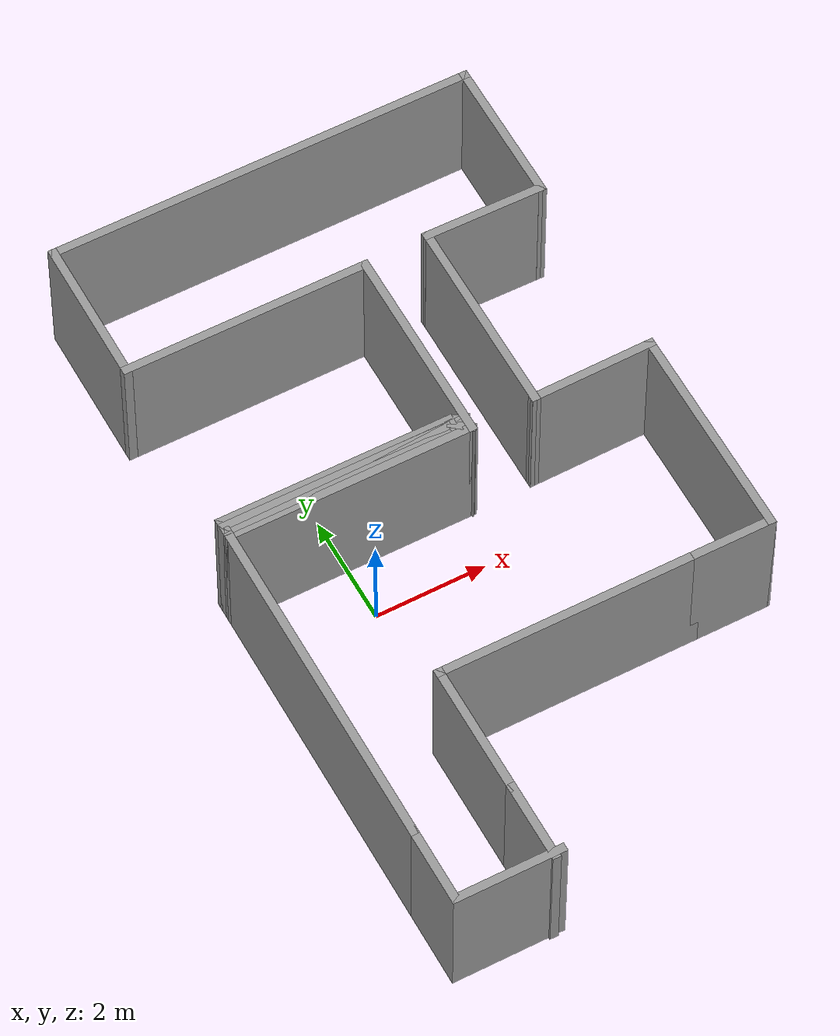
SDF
<?xml version='1.0'?>
<sdf version='1.7'>
  <model name='paper3'>
    <pose>1.78052 0.395 0 0 -0 0</pose>
    <link name='Wall_1'>
      <collision name='Wall_1_Collision'>
        <geometry>
          <box>
            <size>6.25 0.15 2.5</size>
          </box>
        </geometry>
        <pose>0 0 1.25 0 -0 0</pose>
      </collision>
      <visual name='Wall_1_Visual'>
        <pose>0 0 1.25 0 -0 0</pose>
        <geometry>
          <box>
            <size>6.25 0.15 2.5</size>
          </box>
        </geometry>
        <material>
          <script>
            <uri>file://media/materials/scripts/gazebo.material</uri>
            <name>Gazebo/Grey</name>
          </script>
          <ambient>1 1 1 1</ambient>
        </material>
        <meta>
          <layer>0</layer>
        </meta>
      </visual>
      <pose>-3.83052 -2.405 0 0 -0 -1.5708</pose>
    </link>
    <link name='Wall_12'>
      <collision name='Wall_12_Collision'>
        <geometry>
          <box>
            <size>0.25 0.15 2.5</size>
          </box>
        </geometry>
        <pose>0 0 1.25 0 -0 0</pose>
      </collision>
      <visual name='Wall_12_Visual'>
        <pose>0 0 1.25 0 -0 0</pose>
        <geometry>
          <box>
            <size>0.25 0.15 2.5</size>
          </box>
        </geometry>
        <material>
          <script>
            <uri>file://media/materials/scripts/gazebo.material</uri>
            <name>Gazebo/Grey</name>
          </script>
          <ambient>1 1 1 1</ambient>
        </material>
        <meta>
          <layer>0</layer>
        </meta>
      </visual>
      <pose>-3.83052 0.695 0 0 -0 1.5708</pose>
    </link>
    <link name='Wall_13'>
      <collision name='Wall_13_Collision'>
        <geometry>
          <box>
            <size>4.25 0.15 2.5</size>
          </box>
        </geometry>
        <pose>0 0 1.25 0 -0 0</pose>
      </collision>
      <visual name='Wall_13_Visual'>
        <pose>0 0 1.25 0 -0 0</pose>
        <geometry>
          <box>
            <size>4.25 0.15 2.5</size>
          </box>
        </geometry>
        <material>
          <script>
            <uri>file://media/materials/scripts/gazebo.material</uri>
            <name>Gazebo/Grey</name>
          </script>
          <ambient>1 1 1 1</ambient>
        </material>
        <meta>
          <layer>0</layer>
        </meta>
      </visual>
      <pose>-1.78052 0.745 0 0 -0 0</pose>
    </link>
    <link name='Wall_14'>
      <collision name='Wall_14_Collision'>
        <geometry>
          <box>
            <size>0.25 0.15 2.5</size>
          </box>
        </geometry>
        <pose>0 0 1.25 0 -0 0</pose>
      </collision>
      <visual name='Wall_14_Visual'>
        <pose>0 0 1.25 0 -0 0</pose>
        <geometry>
          <box>
            <size>0.25 0.15 2.5</size>
          </box>
        </geometry>
        <material>
          <script>
            <uri>file://media/materials/scripts/gazebo.material</uri>
            <name>Gazebo/Grey</name>
          </script>
          <ambient>1 1 1 1</ambient>
        </material>
        <meta>
          <layer>0</layer>
        </meta>
      </visual>
      <pose>0.269483 0.795 0 0 -0 1.5708</pose>
    </link>
    <link name='Wall_15'>
      <collision name='Wall_15_Collision'>
        <geometry>
          <box>
            <size>3.75 0.15 2.5</size>
          </box>
        </geometry>
        <pose>0 0 1.25 0 -0 0</pose>
      </collision>
      <visual name='Wall_15_Visual'>
        <pose>0 0 1.25 0 -0 0</pose>
        <geometry>
          <box>
            <size>3.75 0.15 2.5</size>
          </box>
        </geometry>
        <material>
          <script>
            <uri>file://media/materials/scripts/gazebo.material</uri>
            <name>Gazebo/Grey</name>
          </script>
          <ambient>1 1 1 1</ambient>
        </material>
        <meta>
          <layer>0</layer>
        </meta>
      </visual>
      <pose>-1.53052 0.845 0 0 -0 3.14159</pose>
    </link>
    <link name='Wall_17'>
      <collision name='Wall_17_Collision'>
        <geometry>
          <box>
            <size>0.25 0.15 2.5</size>
          </box>
        </geometry>
        <pose>0 0 1.25 0 -0 0</pose>
      </collision>
      <visual name='Wall_17_Visual'>
        <pose>0 0 1.25 0 -0 0</pose>
        <geometry>
          <box>
            <size>0.25 0.15 2.5</size>
          </box>
        </geometry>
        <material>
          <script>
            <uri>file://media/materials/scripts/gazebo.material</uri>
            <name>Gazebo/Grey</name>
          </script>
          <ambient>1 1 1 1</ambient>
        </material>
        <meta>
          <layer>0</layer>
        </meta>
      </visual>
      <pose>-3.83052 0.795 0 0 -0 1.5708</pose>
    </link>
    <link name='Wall_18'>
      <collision name='Wall_18_Collision'>
        <geometry>
          <box>
            <size>4.5 0.15 2.5</size>
          </box>
        </geometry>
        <pose>0 0 1.25 0 -0 0</pose>
      </collision>
      <visual name='Wall_18_Visual'>
        <pose>0 0 1.25 0 -0 0</pose>
        <geometry>
          <box>
            <size>4.5 0.15 2.5</size>
          </box>
        </geometry>
        <material>
          <script>
            <uri>file://media/materials/scripts/gazebo.material</uri>
            <name>Gazebo/Grey</name>
          </script>
          <ambient>1 1 1 1</ambient>
        </material>
        <meta>
          <layer>0</layer>
        </meta>
      </visual>
      <pose>-1.65552 0.845 0 0 -0 0</pose>
    </link>
    <link name='Wall_21'>
      <collision name='Wall_21_Collision'>
        <geometry>
          <box>
            <size>0.35 0.15 2.5</size>
          </box>
        </geometry>
        <pose>0 0 1.25 0 -0 0</pose>
      </collision>
      <visual name='Wall_21_Visual'>
        <pose>0 0 1.25 0 -0 0</pose>
        <geometry>
          <box>
            <size>0.35 0.15 2.5</size>
          </box>
        </geometry>
        <material>
          <script>
            <uri>file://media/materials/scripts/gazebo.material</uri>
            <name>Gazebo/Grey</name>
          </script>
          <ambient>1 1 1 1</ambient>
        </material>
        <meta>
          <layer>0</layer>
        </meta>
      </visual>
      <pose>0.519483 0.745 0 0 -0 -1.5708</pose>
    </link>
    <link name='Wall_22'>
      <collision name='Wall_22_Collision'>
        <geometry>
          <box>
            <size>0.470156 0.15 2.5</size>
          </box>
        </geometry>
        <pose>0 0 1.25 0 -0 0</pose>
      </collision>
      <visual name='Wall_22_Visual'>
        <pose>0 0 1.25 0 -0 0</pose>
        <geometry>
          <box>
            <size>0.470156 0.15 2.5</size>
          </box>
        </geometry>
        <material>
          <script>
            <uri>file://media/materials/scripts/gazebo.material</uri>
            <name>Gazebo/Grey</name>
          </script>
          <ambient>1 1 1 1</ambient>
        </material>
        <meta>
          <layer>0</layer>
        </meta>
      </visual>
      <pose>0.394483 0.745 0 0 -0 2.46685</pose>
    </link>
    <link name='Wall_24'>
      <collision name='Wall_24_Collision'>
        <geometry>
          <box>
            <size>0.25 0.15 2.5</size>
          </box>
        </geometry>
        <pose>0 0 1.25 0 -0 0</pose>
      </collision>
      <visual name='Wall_24_Visual'>
        <pose>0 0 1.25 0 -0 0</pose>
        <geometry>
          <box>
            <size>0.25 0.15 2.5</size>
          </box>
        </geometry>
        <material>
          <script>
            <uri>file://media/materials/scripts/gazebo.material</uri>
            <name>Gazebo/Grey</name>
          </script>
          <ambient>1 1 1 1</ambient>
        </material>
        <meta>
          <layer>0</layer>
        </meta>
      </visual>
      <pose>-3.83052 0.895 0 0 -0 1.5708</pose>
    </link>
    <link name='Wall_25'>
      <collision name='Wall_25_Collision'>
        <geometry>
          <box>
            <size>4.25 0.15 2.5</size>
          </box>
        </geometry>
        <pose>0 0 1.25 0 -0 0</pose>
      </collision>
      <visual name='Wall_25_Visual'>
        <pose>0 0 1.25 0 -0 0</pose>
        <geometry>
          <box>
            <size>4.25 0.15 2.5</size>
          </box>
        </geometry>
        <material>
          <script>
            <uri>file://media/materials/scripts/gazebo.material</uri>
            <name>Gazebo/Grey</name>
          </script>
          <ambient>1 1 1 1</ambient>
        </material>
        <meta>
          <layer>0</layer>
        </meta>
      </visual>
      <pose>-1.78052 0.945 0 0 -0 0</pose>
    </link>
    <link name='Wall_26'>
      <collision name='Wall_26_Collision'>
        <geometry>
          <box>
            <size>0.419258 0.15 2.5</size>
          </box>
        </geometry>
        <pose>0 0 1.25 0 -0 0</pose>
      </collision>
      <visual name='Wall_26_Visual'>
        <pose>0 0 1.25 0 -0 0</pose>
        <geometry>
          <box>
            <size>0.419258 0.15 2.5</size>
          </box>
        </geometry>
        <material>
          <script>
            <uri>file://media/materials/scripts/gazebo.material</uri>
            <name>Gazebo/Grey</name>
          </script>
          <ambient>1 1 1 1</ambient>
        </material>
        <meta>
          <layer>0</layer>
        </meta>
      </visual>
      <pose>0.394483 0.895 0 0 -0 -0.380506</pose>
    </link>
    <link name='Wall_35'>
      <collision name='Wall_35_Collision'>
        <geometry>
          <box>
            <size>3.75 0.15 2.5</size>
          </box>
        </geometry>
        <pose>0 0 1.25 0 -0 0</pose>
      </collision>
      <visual name='Wall_35_Visual'>
        <pose>0 0 1.25 0 -0 0</pose>
        <geometry>
          <box>
            <size>3.75 0.15 2.5</size>
          </box>
        </geometry>
        <material>
          <script>
            <uri>file://media/materials/scripts/gazebo.material</uri>
            <name>Gazebo/Grey</name>
          </script>
          <ambient>1 1 1 1</ambient>
        </material>
        <meta>
          <layer>0</layer>
        </meta>
      </visual>
      <pose>1.68213 2.47518 0 0 -0 -1.5708</pose>
    </link>
    <link name='Wall_39'>
      <collision name='Wall_39_Collision'>
        <geometry>
          <box>
            <size>1.5 0.15 2.5</size>
          </box>
        </geometry>
        <pose>0 0 1.25 0 -0 0</pose>
      </collision>
      <visual name='Wall_39_Visual'>
        <pose>0 0 1.25 0 -0 0</pose>
        <geometry>
          <box>
            <size>1.5 0.15 2.5</size>
          </box>
        </geometry>
        <material>
          <script>
            <uri>file://media/materials/scripts/gazebo.material</uri>
            <name>Gazebo/Grey</name>
          </script>
          <ambient>1 1 1 1</ambient>
        </material>
        <meta>
          <layer>0</layer>
        </meta>
      </visual>
      <pose>3.15448 -3.145 0 0 -0 0</pose>
    </link>
    <link name='Wall_4'>
      <collision name='Wall_4_Collision'>
        <geometry>
          <box>
            <size>2.5 0.15 2.5</size>
          </box>
        </geometry>
        <pose>0 0 1.25 0 -0 0</pose>
      </collision>
      <visual name='Wall_4_Visual'>
        <pose>0 0 1.25 0 -0 0</pose>
        <geometry>
          <box>
            <size>2.5 0.15 2.5</size>
          </box>
        </geometry>
        <material>
          <script>
            <uri>file://media/materials/scripts/gazebo.material</uri>
            <name>Gazebo/Grey</name>
          </script>
          <ambient>1 1 1 1</ambient>
        </material>
        <meta>
          <layer>0</layer>
        </meta>
      </visual>
      <pose>-2.12052 -4.32 0 0 -0 1.5708</pose>
    </link>
    <link name='Wall_40'>
      <collision name='Wall_40_Collision'>
        <geometry>
          <box>
            <size>4 0.15 2.5</size>
          </box>
        </geometry>
        <pose>0 0 1.25 0 -0 0</pose>
      </collision>
      <visual name='Wall_40_Visual'>
        <pose>0 0 1.25 0 -0 0</pose>
        <geometry>
          <box>
            <size>4 0.15 2.5</size>
          </box>
        </geometry>
        <material>
          <script>
            <uri>file://media/materials/scripts/gazebo.material</uri>
            <name>Gazebo/Grey</name>
          </script>
          <ambient>1 1 1 1</ambient>
        </material>
        <meta>
          <layer>0</layer>
        </meta>
      </visual>
      <pose>3.82948 -1.22 0 0 -0 1.5708</pose>
    </link>
    <link name='Wall_41'>
      <collision name='Wall_41_Collision'>
        <geometry>
          <box>
            <size>2.29756 0.15 2.5</size>
          </box>
        </geometry>
        <pose>0 0 1.25 0 -0 0</pose>
      </collision>
      <visual name='Wall_41_Visual'>
        <pose>0 0 1.25 0 -0 0</pose>
        <geometry>
          <box>
            <size>2.29756 0.15 2.5</size>
          </box>
        </geometry>
        <material>
          <script>
            <uri>file://media/materials/scripts/gazebo.material</uri>
            <name>Gazebo/Grey</name>
          </script>
          <ambient>1 1 1 1</ambient>
        </material>
        <meta>
          <layer>0</layer>
        </meta>
      </visual>
      <pose>2.7558 0.690087 0 0 -0 -3.1277</pose>
    </link>
    <link name='Wall_43'>
      <collision name='Wall_43_Collision'>
        <geometry>
          <box>
            <size>4.5 0.15 2.5</size>
          </box>
        </geometry>
        <pose>0 0 1.25 0 -0 0</pose>
      </collision>
      <visual name='Wall_43_Visual'>
        <pose>0 0 1.25 0 -0 0</pose>
        <geometry>
          <box>
            <size>4.5 0.15 2.5</size>
          </box>
        </geometry>
        <material>
          <script>
            <uri>file://media/materials/scripts/gazebo.material</uri>
            <name>Gazebo/Grey</name>
          </script>
          <ambient>1 1 1 1</ambient>
        </material>
        <meta>
          <layer>0</layer>
        </meta>
      </visual>
      <pose>-1.65552 4.245 0 0 -0 3.14159</pose>
    </link>
    <link name='Wall_44'>
      <collision name='Wall_44_Collision'>
        <geometry>
          <box>
            <size>2.75 0.15 2.5</size>
          </box>
        </geometry>
        <pose>0 0 1.25 0 -0 0</pose>
      </collision>
      <visual name='Wall_44_Visual'>
        <pose>0 0 1.25 0 -0 0</pose>
        <geometry>
          <box>
            <size>2.75 0.15 2.5</size>
          </box>
        </geometry>
        <material>
          <script>
            <uri>file://media/materials/scripts/gazebo.material</uri>
            <name>Gazebo/Grey</name>
          </script>
          <ambient>1 1 1 1</ambient>
        </material>
        <meta>
          <layer>0</layer>
        </meta>
      </visual>
      <pose>-3.83052 5.545 0 0 -0 1.5708</pose>
    </link>
    <link name='Wall_45'>
      <collision name='Wall_45_Collision'>
        <geometry>
          <box>
            <size>7.75 0.15 2.5</size>
          </box>
        </geometry>
        <pose>0 0 1.25 0 -0 0</pose>
      </collision>
      <visual name='Wall_45_Visual'>
        <pose>0 0 1.25 0 -0 0</pose>
        <geometry>
          <box>
            <size>7.75 0.15 2.5</size>
          </box>
        </geometry>
        <material>
          <script>
            <uri>file://media/materials/scripts/gazebo.material</uri>
            <name>Gazebo/Grey</name>
          </script>
          <ambient>1 1 1 1</ambient>
        </material>
        <meta>
          <layer>0</layer>
        </meta>
      </visual>
      <pose>-0.030517 6.845 0 0 -0 0</pose>
    </link>
    <link name='Wall_46'>
      <collision name='Wall_46_Collision'>
        <geometry>
          <box>
            <size>2.75 0.15 2.5</size>
          </box>
        </geometry>
        <pose>0 0 1.25 0 -0 0</pose>
      </collision>
      <visual name='Wall_46_Visual'>
        <pose>0 0 1.25 0 -0 0</pose>
        <geometry>
          <box>
            <size>2.75 0.15 2.5</size>
          </box>
        </geometry>
        <material>
          <script>
            <uri>file://media/materials/scripts/gazebo.material</uri>
            <name>Gazebo/Grey</name>
          </script>
          <ambient>1 1 1 1</ambient>
        </material>
        <meta>
          <layer>0</layer>
        </meta>
      </visual>
      <pose>3.76948 5.545 0 0 -0 -1.5708</pose>
    </link>
    <link name='Wall_47'>
      <collision name='Wall_47_Collision'>
        <geometry>
          <box>
            <size>2.23757 0.15 2.5</size>
          </box>
        </geometry>
        <pose>0 0 1.25 0 -0 0</pose>
      </collision>
      <visual name='Wall_47_Visual'>
        <pose>0 0 1.25 0 -0 0</pose>
        <geometry>
          <box>
            <size>2.23757 0.15 2.5</size>
          </box>
        </geometry>
        <material>
          <script>
            <uri>file://media/materials/scripts/gazebo.material</uri>
            <name>Gazebo/Grey</name>
          </script>
          <ambient>1 1 1 1</ambient>
        </material>
        <meta>
          <layer>0</layer>
        </meta>
      </visual>
      <pose>2.7258 4.26009 0 0 -0 3.12714</pose>
    </link>
    <link name='Wall_49'>
      <collision name='Wall_49_Collision'>
        <geometry>
          <box>
            <size>1.5 0.15 2.5</size>
          </box>
        </geometry>
        <pose>0 0 1.25 0 -0 0</pose>
      </collision>
      <visual name='Wall_49_Visual'>
        <pose>0 0 1.25 0 -0 0</pose>
        <geometry>
          <box>
            <size>1.5 0.15 2.5</size>
          </box>
        </geometry>
        <material>
          <script>
            <uri>file://media/materials/scripts/gazebo.material</uri>
            <name>Gazebo/Grey</name>
          </script>
          <ambient>1 1 1 1</ambient>
        </material>
        <meta>
          <layer>0</layer>
        </meta>
      </visual>
      <pose>-3.83052 -6.13 0 0 -0 -1.5708</pose>
    </link>
    <link name='Wall_5'>
      <collision name='Wall_5_Collision'>
        <geometry>
          <box>
            <size>4.75 0.15 2.5</size>
          </box>
        </geometry>
        <pose>0 0 1.25 0 -0 0</pose>
      </collision>
      <visual name='Wall_5_Visual'>
        <pose>0 0 1.25 0 -0 0</pose>
        <geometry>
          <box>
            <size>4.75 0.15 2.5</size>
          </box>
        </geometry>
        <material>
          <script>
            <uri>file://media/materials/scripts/gazebo.material</uri>
            <name>Gazebo/Grey</name>
          </script>
          <ambient>1 1 1 1</ambient>
        </material>
        <meta>
          <layer>0</layer>
        </meta>
      </visual>
      <pose>0.179483 -3.145 0 0 -0 0</pose>
    </link>
    <link name='Wall_50'>
      <collision name='Wall_50_Collision'>
        <geometry>
          <box>
            <size>2 0.15 2.5</size>
          </box>
        </geometry>
        <pose>0 0 1.25 0 -0 0</pose>
      </collision>
      <visual name='Wall_50_Visual'>
        <pose>0 0 1.25 0 -0 0</pose>
        <geometry>
          <box>
            <size>2 0.15 2.5</size>
          </box>
        </geometry>
        <material>
          <script>
            <uri>file://media/materials/scripts/gazebo.material</uri>
            <name>Gazebo/Grey</name>
          </script>
          <ambient>1 1 1 1</ambient>
        </material>
        <meta>
          <layer>0</layer>
        </meta>
      </visual>
      <pose>-2.90552 -6.805 0 0 -0 0</pose>
    </link>
    <link name='Wall_52'>
      <collision name='Wall_52_Collision'>
        <geometry>
          <box>
            <size>1.5 0.15 2.5</size>
          </box>
        </geometry>
        <pose>0 0 1.25 0 -0 0</pose>
      </collision>
      <visual name='Wall_52_Visual'>
        <pose>0 0 1.25 0 -0 0</pose>
        <geometry>
          <box>
            <size>1.5 0.15 2.5</size>
          </box>
        </geometry>
        <material>
          <script>
            <uri>file://media/materials/scripts/gazebo.material</uri>
            <name>Gazebo/Grey</name>
          </script>
          <ambient>1 1 1 1</ambient>
        </material>
        <meta>
          <layer>0</layer>
        </meta>
      </visual>
      <pose>-2.12052 -6.17 0 0 -0 -1.5708</pose>
    </link>
    <link name='Wall_7'>
      <collision name='Wall_7_Collision'>
        <geometry>
          <box>
            <size>4.5 0.15 2.5</size>
          </box>
        </geometry>
        <pose>0 0 1.25 0 -0 0</pose>
      </collision>
      <visual name='Wall_7_Visual'>
        <pose>0 0 1.25 0 -0 0</pose>
        <geometry>
          <box>
            <size>4.5 0.15 2.5</size>
          </box>
        </geometry>
        <material>
          <script>
            <uri>file://media/materials/scripts/gazebo.material</uri>
            <name>Gazebo/Grey</name>
          </script>
          <ambient>1 1 1 1</ambient>
        </material>
        <meta>
          <layer>0</layer>
        </meta>
      </visual>
      <pose>-1.65552 0.645 0 0 -0 0</pose>
    </link>
    <link name='Wall_8'>
      <collision name='Wall_8_Collision'>
        <geometry>
          <box>
            <size>3.75 0.15 2.5</size>
          </box>
        </geometry>
        <pose>0 0 1.25 0 -0 0</pose>
      </collision>
      <visual name='Wall_8_Visual'>
        <pose>0 0 1.25 0 -0 0</pose>
        <geometry>
          <box>
            <size>3.75 0.15 2.5</size>
          </box>
        </geometry>
        <material>
          <script>
            <uri>file://media/materials/scripts/gazebo.material</uri>
            <name>Gazebo/Grey</name>
          </script>
          <ambient>1 1 1 1</ambient>
        </material>
        <meta>
          <layer>0</layer>
        </meta>
      </visual>
      <pose>0.519483 2.445 0 0 -0 1.5708</pose>
    </link>
    <static>1</static>
  </model>
</sdf>
